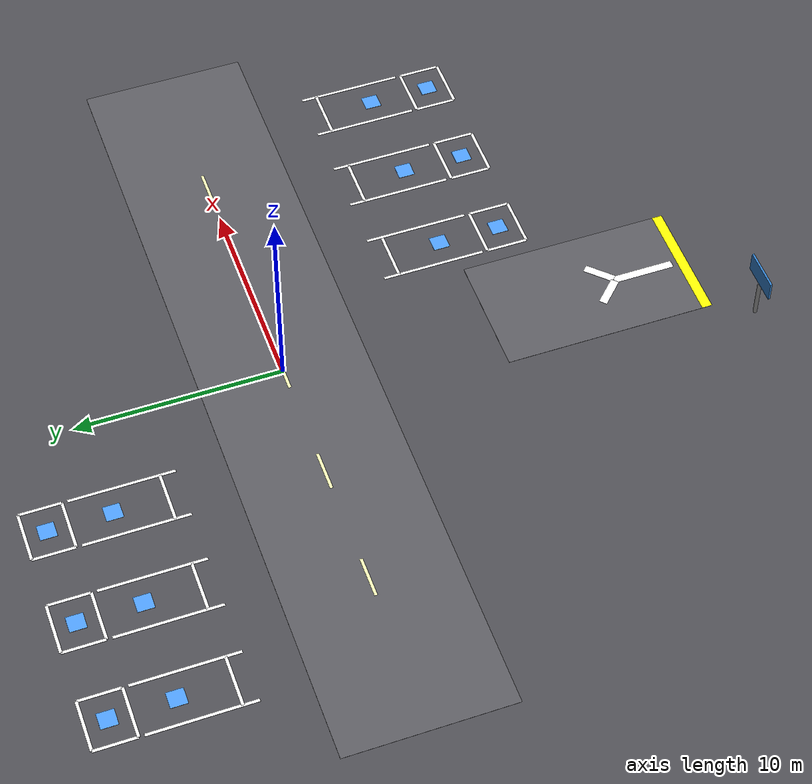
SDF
<?xml version="1.0" ?>
<sdf version="1.6">
  <world name="parking_lot_b">

    <!-- Sun / lighting -->
    <include>
      <uri>model://sun</uri>
    </include>

    <!-- Physics -->
    <physics type="ode">
      <real_time_update_rate>1000</real_time_update_rate>
      <max_step_size>0.001</max_step_size>
    </physics>

    <!-- Ground (asphalt with texture variation) -->
    <model name="ground_plane">
      <static>true</static>
      <link name="link">
        <collision name="collision">
          <geometry>
            <plane>
              <normal>0 0 1</normal>
              <size>50 50</size>
            </plane>
          </geometry>
        </collision>
        <visual name="visual">
          <geometry>
            <plane>
              <normal>0 0 1</normal>
              <size>50 50</size>
            </plane>
          </geometry>
          <material>
            <ambient>0.2 0.2 0.22 1</ambient>
            <diffuse>0.3 0.3 0.32 1</diffuse>
          </material>
        </visual>
      </link>
    </model>

    <!-- Central Entry Lane (vertical) -->
    <model name="entry_lane">
      <static>true</static>
      <link name="link">
        <!-- Entry surface -->
        <visual name="entry_surface">
          <pose>0 -15 0.001 0 0 0</pose>
          <geometry><box><size>6 10 0.01</size></box></geometry>
          <material>
            <ambient>0.25 0.25 0.27 1</ambient>
            <diffuse>0.35 0.35 0.37 1</diffuse>
          </material>
        </visual>

        <!-- Entry marking at the entrance -->
        <visual name="entry_marking">
          <pose>0 -20 0.002 0 0 0</pose>
          <geometry><box><size>6 0.5 0.01</size></box></geometry>
          <material><diffuse>1 1 0 1</diffuse></material>
        </visual>

        <!-- Directional arrow -->
        <visual name="arrow_shaft">
          <pose>0 -18 0.002 0 0 0</pose>
          <geometry><box><size>0.4 3 0.01</size></box></geometry>
          <material><diffuse>1 1 1 1</diffuse></material>
        </visual>
        <visual name="arrow_head_left">
          <pose>-0.6 -16 0.002 0 0 0.785</pose>
          <geometry><box><size>0.4 1.5 0.01</size></box></geometry>
          <material><diffuse>1 1 1 1</diffuse></material>
        </visual>
        <visual name="arrow_head_right">
          <pose>0.6 -16 0.002 0 0 -0.785</pose>
          <geometry><box><size>0.4 1.5 0.01</size></box></geometry>
          <material><diffuse>1 1 1 1</diffuse></material>
        </visual>
      </link>
    </model>

    <!-- Main Driving Lane (horizontal) -->
    <model name="main_lane">
      <static>true</static>
      <link name="link">
        <visual name="lane_surface">
          <pose>0 0 0.001 0 0 0</pose>
          <geometry><box><size>40 8 0.01</size></box></geometry>
          <material>
            <ambient>0.25 0.25 0.27 1</ambient>
            <diffuse>0.35 0.35 0.37 1</diffuse>
          </material>
        </visual>

        <!-- Center lane dashes -->
        <visual name="dash1"><pose>-12 0 0.002 0 0 0</pose>
          <geometry><box><size>2 0.15 0.01</size></box></geometry>
          <material><diffuse>1 1 0.7 1</diffuse></material>
        </visual>
        <visual name="dash2"><pose>-6 0 0.002 0 0 0</pose>
          <geometry><box><size>2 0.15 0.01</size></box></geometry>
          <material><diffuse>1 1 0.7 1</diffuse></material>
        </visual>
        <visual name="dash3"><pose>0 0 0.002 0 0 0</pose>
          <geometry><box><size>2 0.15 0.01</size></box></geometry>
          <material><diffuse>1 1 0.7 1</diffuse></material>
        </visual>
        <visual name="dash4"><pose>6 0 0.002 0 0 0</pose>
          <geometry><box><size>2 0.15 0.01</size></box></geometry>
          <material><diffuse>1 1 0.7 1</diffuse></material>
        </visual>
        <visual name="dash5"><pose>12 0 0.002 0 0 0</pose>
          <geometry><box><size>2 0.15 0.01</size></box></geometry>
          <material><diffuse>1 1 0.7 1</diffuse></material>
        </visual>
      </link>
    </model>

    <!-- LEFT SIDE PARKING: 2 rows × 3 columns -->
    <!-- Row 1 (closer to lane): L1, L2, L3 -->
    <!-- Row 2 (farther from lane): L4, L5, L6 -->

    <model name="left_parking">
      <static>true</static>
      <link name="link">

        <!-- ROW 1: L1, L2, L3 (perpendicular, front-in from lane) -->

        <!-- L1 (leftmost) -->
        <visual name="L1_back"><pose>-15 7 0.002 0 0 0</pose>
          <geometry><box><size>2.5 0.15 0.01</size></box></geometry>
          <material><diffuse>1 1 1 1</diffuse></material>
        </visual>
        <visual name="L1_left"><pose>-16.25 8.75 0.002 0 0 0</pose>
          <geometry><box><size>0.15 5 0.01</size></box></geometry>
          <material><diffuse>1 1 1 1</diffuse></material>
        </visual>
        <visual name="L1_right"><pose>-13.75 8.75 0.002 0 0 0</pose>
          <geometry><box><size>0.15 5 0.01</size></box></geometry>
          <material><diffuse>1 1 1 1</diffuse></material>
        </visual>
        <visual name="L1_number"><pose>-15 9.5 0.003 0 0 0</pose>
          <geometry><box><size>0.8 0.8 0.01</size></box></geometry>
          <material><diffuse>0.3 0.6 1 1</diffuse></material>
        </visual>

        <!-- L2 (center) -->
        <visual name="L2_back"><pose>-10 7 0.002 0 0 0</pose>
          <geometry><box><size>2.5 0.15 0.01</size></box></geometry>
          <material><diffuse>1 1 1 1</diffuse></material>
        </visual>
        <visual name="L2_left"><pose>-11.25 8.75 0.002 0 0 0</pose>
          <geometry><box><size>0.15 5 0.01</size></box></geometry>
          <material><diffuse>1 1 1 1</diffuse></material>
        </visual>
        <visual name="L2_right"><pose>-8.75 8.75 0.002 0 0 0</pose>
          <geometry><box><size>0.15 5 0.01</size></box></geometry>
          <material><diffuse>1 1 1 1</diffuse></material>
        </visual>
        <visual name="L2_number"><pose>-10 9.5 0.003 0 0 0</pose>
          <geometry><box><size>0.8 0.8 0.01</size></box></geometry>
          <material><diffuse>0.3 0.6 1 1</diffuse></material>
        </visual>

        <!-- L3 (rightmost of row 1) -->
        <visual name="L3_back"><pose>-5 7 0.002 0 0 0</pose>
          <geometry><box><size>2.5 0.15 0.01</size></box></geometry>
          <material><diffuse>1 1 1 1</diffuse></material>
        </visual>
        <visual name="L3_left"><pose>-6.25 8.75 0.002 0 0 0</pose>
          <geometry><box><size>0.15 5 0.01</size></box></geometry>
          <material><diffuse>1 1 1 1</diffuse></material>
        </visual>
        <visual name="L3_right"><pose>-3.75 8.75 0.002 0 0 0</pose>
          <geometry><box><size>0.15 5 0.01</size></box></geometry>
          <material><diffuse>1 1 1 1</diffuse></material>
        </visual>
        <visual name="L3_number"><pose>-5 9.5 0.003 0 0 0</pose>
          <geometry><box><size>0.8 0.8 0.01</size></box></geometry>
          <material><diffuse>0.3 0.6 1 1</diffuse></material>
        </visual>

        <!-- ROW 2: L4, L5, L6 (back row, parallel to row 1) -->

        <visual name="L4_back"><pose>-15 13.5 0.002 0 0 0</pose>
          <geometry><box><size>2.5 0.15 0.01</size></box></geometry>
          <material><diffuse>1 1 1 1</diffuse></material>
        </visual>
        <visual name="L4_front"><pose>-15 11.5 0.002 0 0 0</pose>
          <geometry><box><size>2.5 0.15 0.01</size></box></geometry>
          <material><diffuse>1 1 1 1</diffuse></material>
        </visual>
        <visual name="L4_left"><pose>-16.25 12.5 0.002 0 0 0</pose>
          <geometry><box><size>0.15 2 0.01</size></box></geometry>
          <material><diffuse>1 1 1 1</diffuse></material>
        </visual>
        <visual name="L4_right"><pose>-13.75 12.5 0.002 0 0 0</pose>
          <geometry><box><size>0.15 2 0.01</size></box></geometry>
          <material><diffuse>1 1 1 1</diffuse></material>
        </visual>
        <visual name="L4_number"><pose>-15 12.5 0.003 0 0 0</pose>
          <geometry><box><size>0.8 0.8 0.01</size></box></geometry>
          <material><diffuse>0.3 0.6 1 1</diffuse></material>
        </visual>

        <visual name="L5_back"><pose>-10 13.5 0.002 0 0 0</pose>
          <geometry><box><size>2.5 0.15 0.01</size></box></geometry>
          <material><diffuse>1 1 1 1</diffuse></material>
        </visual>
        <visual name="L5_front"><pose>-10 11.5 0.002 0 0 0</pose>
          <geometry><box><size>2.5 0.15 0.01</size></box></geometry>
          <material><diffuse>1 1 1 1</diffuse></material>
        </visual>
        <visual name="L5_left"><pose>-11.25 12.5 0.002 0 0 0</pose>
          <geometry><box><size>0.15 2 0.01</size></box></geometry>
          <material><diffuse>1 1 1 1</diffuse></material>
        </visual>
        <visual name="L5_right"><pose>-8.75 12.5 0.002 0 0 0</pose>
          <geometry><box><size>0.15 2 0.01</size></box></geometry>
          <material><diffuse>1 1 1 1</diffuse></material>
        </visual>
        <visual name="L5_number"><pose>-10 12.5 0.003 0 0 0</pose>
          <geometry><box><size>0.8 0.8 0.01</size></box></geometry>
          <material><diffuse>0.3 0.6 1 1</diffuse></material>
        </visual>

        <visual name="L6_back"><pose>-5 13.5 0.002 0 0 0</pose>
          <geometry><box><size>2.5 0.15 0.01</size></box></geometry>
          <material><diffuse>1 1 1 1</diffuse></material>
        </visual>
        <visual name="L6_front"><pose>-5 11.5 0.002 0 0 0</pose>
          <geometry><box><size>2.5 0.15 0.01</size></box></geometry>
          <material><diffuse>1 1 1 1</diffuse></material>
        </visual>
        <visual name="L6_left"><pose>-6.25 12.5 0.002 0 0 0</pose>
          <geometry><box><size>0.15 2 0.01</size></box></geometry>
          <material><diffuse>1 1 1 1</diffuse></material>
        </visual>
        <visual name="L6_right"><pose>-3.75 12.5 0.002 0 0 0</pose>
          <geometry><box><size>0.15 2 0.01</size></box></geometry>
          <material><diffuse>1 1 1 1</diffuse></material>
        </visual>
        <visual name="L6_number"><pose>-5 12.5 0.003 0 0 0</pose>
          <geometry><box><size>0.8 0.8 0.01</size></box></geometry>
          <material><diffuse>0.3 0.6 1 1</diffuse></material>
        </visual>

      </link>
    </model>

    <!-- RIGHT SIDE PARKING: 2 rows × 3 columns (mirrored) -->

    <model name="right_parking">
      <static>true</static>
      <link name="link">

        <!-- ROW 1: R1, R2, R3 (perpendicular, front-in from lane) -->

        <visual name="R1_back"><pose>5 -7 0.002 0 0 0</pose>
          <geometry><box><size>2.5 0.15 0.01</size></box></geometry>
          <material><diffuse>1 1 1 1</diffuse></material>
        </visual>
        <visual name="R1_left"><pose>3.75 -8.75 0.002 0 0 0</pose>
          <geometry><box><size>0.15 5 0.01</size></box></geometry>
          <material><diffuse>1 1 1 1</diffuse></material>
        </visual>
        <visual name="R1_right"><pose>6.25 -8.75 0.002 0 0 0</pose>
          <geometry><box><size>0.15 5 0.01</size></box></geometry>
          <material><diffuse>1 1 1 1</diffuse></material>
        </visual>
        <visual name="R1_number"><pose>5 -9.5 0.003 0 0 0</pose>
          <geometry><box><size>0.8 0.8 0.01</size></box></geometry>
          <material><diffuse>0.3 0.6 1 1</diffuse></material>
        </visual>

        <visual name="R2_back"><pose>10 -7 0.002 0 0 0</pose>
          <geometry><box><size>2.5 0.15 0.01</size></box></geometry>
          <material><diffuse>1 1 1 1</diffuse></material>
        </visual>
        <visual name="R2_left"><pose>8.75 -8.75 0.002 0 0 0</pose>
          <geometry><box><size>0.15 5 0.01</size></box></geometry>
          <material><diffuse>1 1 1 1</diffuse></material>
        </visual>
        <visual name="R2_right"><pose>11.25 -8.75 0.002 0 0 0</pose>
          <geometry><box><size>0.15 5 0.01</size></box></geometry>
          <material><diffuse>1 1 1 1</diffuse></material>
        </visual>
        <visual name="R2_number"><pose>10 -9.5 0.003 0 0 0</pose>
          <geometry><box><size>0.8 0.8 0.01</size></box></geometry>
          <material><diffuse>0.3 0.6 1 1</diffuse></material>
        </visual>

        <visual name="R3_back"><pose>15 -7 0.002 0 0 0</pose>
          <geometry><box><size>2.5 0.15 0.01</size></box></geometry>
          <material><diffuse>1 1 1 1</diffuse></material>
        </visual>
        <visual name="R3_left"><pose>13.75 -8.75 0.002 0 0 0</pose>
          <geometry><box><size>0.15 5 0.01</size></box></geometry>
          <material><diffuse>1 1 1 1</diffuse></material>
        </visual>
        <visual name="R3_right"><pose>16.25 -8.75 0.002 0 0 0</pose>
          <geometry><box><size>0.15 5 0.01</size></box></geometry>
          <material><diffuse>1 1 1 1</diffuse></material>
        </visual>
        <visual name="R3_number"><pose>15 -9.5 0.003 0 0 0</pose>
          <geometry><box><size>0.8 0.8 0.01</size></box></geometry>
          <material><diffuse>0.3 0.6 1 1</diffuse></material>
        </visual>

        <!-- ROW 2: R4, R5, R6 (back row) -->

        <visual name="R4_back"><pose>5 -13.5 0.002 0 0 0</pose>
          <geometry><box><size>2.5 0.15 0.01</size></box></geometry>
          <material><diffuse>1 1 1 1</diffuse></material>
        </visual>
        <visual name="R4_front"><pose>5 -11.5 0.002 0 0 0</pose>
          <geometry><box><size>2.5 0.15 0.01</size></box></geometry>
          <material><diffuse>1 1 1 1</diffuse></material>
        </visual>
        <visual name="R4_left"><pose>3.75 -12.5 0.002 0 0 0</pose>
          <geometry><box><size>0.15 2 0.01</size></box></geometry>
          <material><diffuse>1 1 1 1</diffuse></material>
        </visual>
        <visual name="R4_right"><pose>6.25 -12.5 0.002 0 0 0</pose>
          <geometry><box><size>0.15 2 0.01</size></box></geometry>
          <material><diffuse>1 1 1 1</diffuse></material>
        </visual>
        <visual name="R4_number"><pose>5 -12.5 0.003 0 0 0</pose>
          <geometry><box><size>0.8 0.8 0.01</size></box></geometry>
          <material><diffuse>0.3 0.6 1 1</diffuse></material>
        </visual>

        <visual name="R5_back"><pose>10 -13.5 0.002 0 0 0</pose>
          <geometry><box><size>2.5 0.15 0.01</size></box></geometry>
          <material><diffuse>1 1 1 1</diffuse></material>
        </visual>
        <visual name="R5_front"><pose>10 -11.5 0.002 0 0 0</pose>
          <geometry><box><size>2.5 0.15 0.01</size></box></geometry>
          <material><diffuse>1 1 1 1</diffuse></material>
        </visual>
        <visual name="R5_left"><pose>8.75 -12.5 0.002 0 0 0</pose>
          <geometry><box><size>0.15 2 0.01</size></box></geometry>
          <material><diffuse>1 1 1 1</diffuse></material>
        </visual>
        <visual name="R5_right"><pose>11.25 -12.5 0.002 0 0 0</pose>
          <geometry><box><size>0.15 2 0.01</size></box></geometry>
          <material><diffuse>1 1 1 1</diffuse></material>
        </visual>
        <visual name="R5_number"><pose>10 -12.5 0.003 0 0 0</pose>
          <geometry><box><size>0.8 0.8 0.01</size></box></geometry>
          <material><diffuse>0.3 0.6 1 1</diffuse></material>
        </visual>

        <visual name="R6_back"><pose>15 -13.5 0.002 0 0 0</pose>
          <geometry><box><size>2.5 0.15 0.01</size></box></geometry>
          <material><diffuse>1 1 1 1</diffuse></material>
        </visual>
        <visual name="R6_front"><pose>15 -11.5 0.002 0 0 0</pose>
          <geometry><box><size>2.5 0.15 0.01</size></box></geometry>
          <material><diffuse>1 1 1 1</diffuse></material>
        </visual>
        <visual name="R6_left"><pose>13.75 -12.5 0.002 0 0 0</pose>
          <geometry><box><size>0.15 2 0.01</size></box></geometry>
          <material><diffuse>1 1 1 1</diffuse></material>
        </visual>
        <visual name="R6_right"><pose>16.25 -12.5 0.002 0 0 0</pose>
          <geometry><box><size>0.15 2 0.01</size></box></geometry>
          <material><diffuse>1 1 1 1</diffuse></material>
        </visual>
        <visual name="R6_number"><pose>15 -12.5 0.003 0 0 0</pose>
          <geometry><box><size>0.8 0.8 0.01</size></box></geometry>
          <material><diffuse>0.3 0.6 1 1</diffuse></material>
        </visual>

      </link>
    </model>

    <!-- Entrance Sign -->
    <model name="entrance_sign">
      <static>true</static>
      <link name="link">
        <visual name="sign_post">
          <pose>-4 -22 1 0 0 0</pose>
          <geometry><cylinder><radius>0.1</radius><length>2</length></cylinder></geometry>
          <material><diffuse>0.5 0.5 0.5 1</diffuse></material>
        </visual>
        <visual name="sign_board">
          <pose>-4 -22 2.5 0 0 0</pose>
          <geometry><box><size>2 0.1 1</size></box></geometry>
          <material><diffuse>0.2 0.5 0.8 1</diffuse></material>
        </visual>
      </link>
    </model>

  </world>
</sdf>
